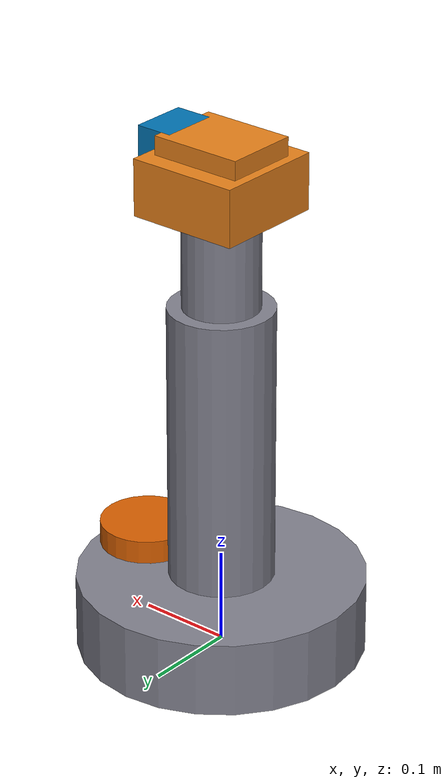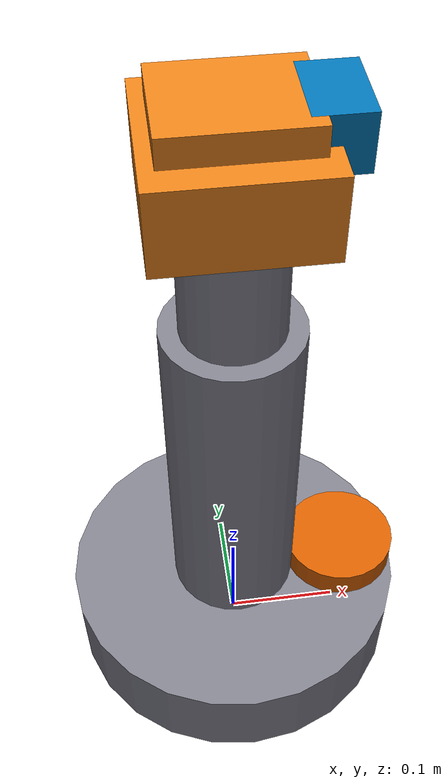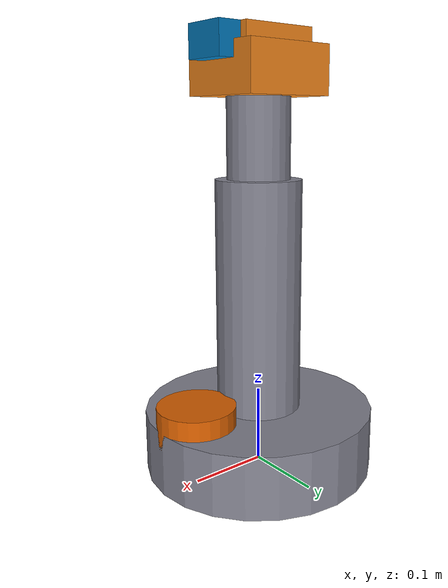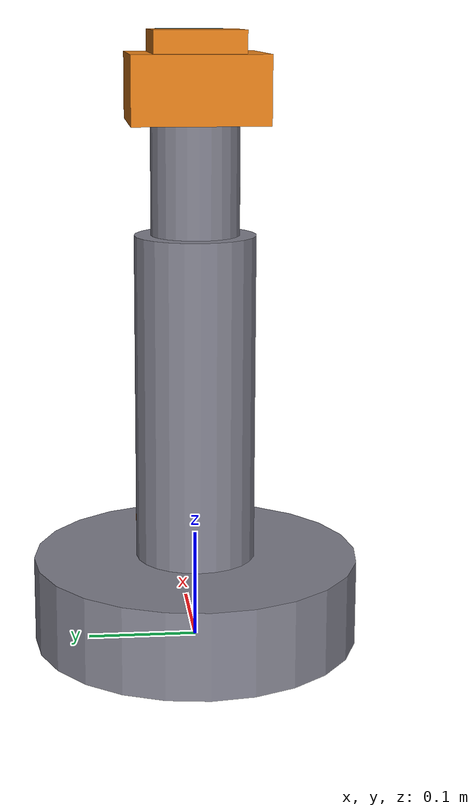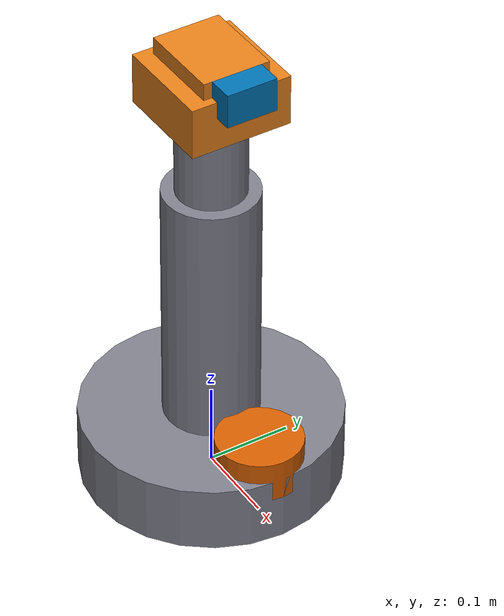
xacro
<?xml version="1.0"?>
<robot name="torre_sensor" xmlns:xacro="http://www.ros.org/wiki/xacro">

  <xacro:property name="raio_base"     value="0.15"/>
  <xacro:property name="altura_base"   value="0.08"/>
  <xacro:property name="raio_mastro"   value="0.04"/>
  <xacro:property name="altura_mastro" value="0.40"/>
  <xacro:property name="curso_elev"    value="0.25"/>
  <xacro:property name="raio_camisa"   value="0.055"/>
  <!-- camisa >= curso + folga: garante que o mastro nunca se descole -->
  <xacro:property name="alt_camisa"    value="${curso_elev + 0.05}"/>

  <material name="cinza">
    <color rgba="0.50 0.50 0.55 1.0"/>
  </material>
  <material name="laranja">
    <color rgba="0.90 0.50 0.10 1.0"/>
  </material>

  <!-- macro reutilizavel: qualquer sensor em caixa, preso por joint fixed -->
  <xacro:macro name="sensor_caixa" params="nome pai x y z massa">
    <link name="${nome}">
      <visual>
        <geometry>
          <box size="0.04 0.06 0.04"/>
        </geometry>
      </visual>
      <collision>
        <geometry>
          <box size="0.04 0.06 0.04"/>
        </geometry>
      </collision>
      <inertial>
        <mass value="${massa}"/>
        <inertia ixx="1e-4" ixy="0.0" ixz="0.0"
                 iyy="1e-4" iyz="0.0" izz="1e-4"/>
      </inertial>
    </link>

    <joint name="junta_${nome}" type="fixed">
      <parent link="${pai}"/>
      <child  link="${nome}"/>
      <origin xyz="${x} ${y} ${z}" rpy="0 0 0"/>
    </joint>
  </xacro:macro>

  <link name="base_torre">
    <visual>
      <origin xyz="0 0 ${altura_base/2}"/>
      <geometry>
        <cylinder radius="${raio_base}" length="${altura_base}"/>
      </geometry>
      <material name="cinza"/>
    </visual>
    <visual>
      <origin xyz="0 0 ${altura_base + alt_camisa/2}"/>
      <geometry>
        <cylinder radius="${raio_camisa}" length="${alt_camisa}"/>
      </geometry>
      <material name="cinza"/>
    </visual>
    <collision>
      <origin xyz="0 0 ${altura_base/2}"/>
      <geometry>
        <cylinder radius="${raio_base}" length="${altura_base}"/>
      </geometry>
    </collision>
    <inertial>
      <origin xyz="0 0 ${altura_base/2}"/>
      <mass value="4.0"/>
      <inertia ixx="0.02463" ixy="0.0" ixz="0.0"
               iyy="0.02463" iyz="0.0" izz="0.04500"/>
    </inertial>
  </link>

  <link name="mastro">
    <visual>
      <origin xyz="0 0 ${altura_mastro/2}"/>
      <geometry>
        <cylinder radius="${raio_mastro}" length="${altura_mastro}"/>
      </geometry>
      <material name="cinza"/>
    </visual>
    <inertial>
      <origin xyz="0 0 ${altura_mastro/2}"/>
      <mass value="1.2"/>
      <inertia ixx="0.01648" ixy="0.0" ixz="0.0"
               iyy="0.01648" iyz="0.0" izz="0.00096"/>
    </inertial>
  </link>

  <joint name="junta_elevacao" type="prismatic">
    <parent link="base_torre"/>
    <child  link="mastro"/>
    <origin xyz="0 0 ${altura_base}"/>
    <axis   xyz="0 0 1"/>
    <limit lower="0.0" upper="${curso_elev}" effort="50.0" velocity="0.10"/>
  </joint>

  <link name="cabeca_pan">
    <visual>
      <origin xyz="0 0 0.03"/>
      <geometry>
        <box size="0.12 0.12 0.06"/>
      </geometry>
      <material name="laranja"/>
    </visual>
    <inertial>
      <origin xyz="0 0 0.03"/>
      <mass value="0.6"/>
      <inertia ixx="0.00090" ixy="0.0" ixz="0.0"
               iyy="0.00090" iyz="0.0" izz="0.00144"/>
    </inertial>
  </link>

  <joint name="junta_pan" type="revolute">
    <parent link="mastro"/>
    <child  link="cabeca_pan"/>
    <origin xyz="0 0 ${altura_mastro}"/>
    <axis   xyz="0 0 1"/>
    <limit lower="-3.14" upper="3.14" effort="10.0" velocity="1.5"/>
  </joint>

  <link name="suporte_tilt">
    <visual>
      <geometry>
        <box size="0.10 0.08 0.04"/>
      </geometry>
      <material name="laranja"/>
    </visual>
    <inertial>
      <mass value="0.3"/>
      <inertia ixx="0.00020" ixy="0.0" ixz="0.0"
               iyy="0.00029" iyz="0.0" izz="0.00041"/>
    </inertial>
  </link>

  <joint name="junta_tilt" type="revolute">
    <parent link="cabeca_pan"/>
    <child  link="suporte_tilt"/>
    <origin xyz="0 0 0.06"/>
    <axis   xyz="0 1 0"/>
    <limit lower="-0.60" upper="0.60" effort="8.0" velocity="1.0"/>
  </joint>

  <!-- a macro instanciada: a camera -->
  <xacro:sensor_caixa nome="camera_link" pai="suporte_tilt"
                      x="0.06" y="0" z="0" massa="0.1"/>

  <link name="lidar_link">
    <visual>
      <geometry>
        <cylinder radius="0.05" length="0.05"/>
      </geometry>
    </visual>
    <inertial>
      <mass value="0.2"/>
      <inertia ixx="1.667e-4" ixy="0.0" ixz="0.0"
               iyy="1.667e-4" iyz="0.0" izz="2.500e-4"/>
    </inertial>
  </link>

  <joint name="junta_lidar" type="continuous">
    <parent link="base_torre"/>
    <child  link="lidar_link"/>
    <origin xyz="0.10 0 ${altura_base}"/>
    <axis   xyz="0 0 1"/>
  </joint>

</robot>
